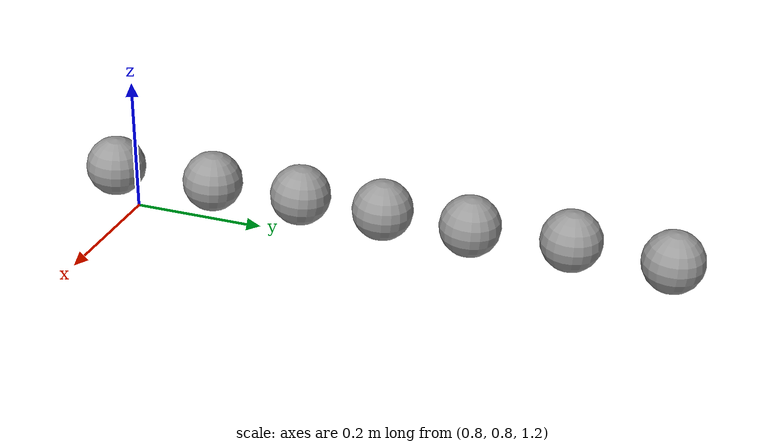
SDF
<sdf version="1.7">
 <world name="default">
  <light name="sun" type="directional">
   <pose>0 0 10 0 -0 0</pose>
   <diffuse>0.8 0.8 0.8 1</diffuse>
   <specular>0.2 0.2 0.2 1</specular>
   <attenuation>
    <range>1000</range>
    <constant>0.9</constant>
    <linear>0.01</linear>
    <quadratic>0.001</quadratic>
   </attenuation>
   <direction>-0.5 0.1 -0.9</direction>
   <spot><inner_angle>0</inner_angle><outer_angle>0</outer_angle><falloff>0</falloff></spot>
  </light>
  <model name="ground_plane">
   <static>1</static>
   <link name="link">
    <collision name="collision">
     <geometry><plane><normal>0 0 1</normal><size>100 100</size></plane></geometry>
     <surface>
      <contact><collide_bitmask>65535</collide_bitmask></contact>
      <friction><ode><mu>100</mu><mu2>50</mu2></ode></friction>
     </surface>
    </collision>
    <visual name="visual">
     <cast_shadows>0</cast_shadows>
     <geometry><plane><normal>0 0 1</normal><size>100 100</size></plane></geometry>
     <material>
      <script><uri>file://media/materials/scripts/gazebo.material</uri><name>Gazebo/Grey</name></script>
     </material>
    </visual>
   </link>
  </model>
  <gravity>0 0 -9.8</gravity>
  <magnetic_field>6e-06 2.3e-05 -4.2e-05</magnetic_field>
  <atmosphere type="adiabatic"/>
  <physics type="ode">
   <max_step_size>0.001</max_step_size>
   <real_time_factor>1</real_time_factor>
   <real_time_update_rate>1000</real_time_update_rate>
  </physics>
  <scene><ambient>0.4 0.4 0.4 1</ambient><background>0.7 0.7 0.7 1</background><shadows>1</shadows></scene>
  <spherical_coordinates>
   <surface_model>EARTH_WGS84</surface_model>
   <latitude_deg>0</latitude_deg>
   <longitude_deg>0</longitude_deg>
   <elevation>0</elevation>
   <heading_deg>0</heading_deg>
  </spherical_coordinates>
  <model name="unit_sphere">
   <pose>0.822964 1.61863 1.27211 -0.076471 0.019372 0.000922</pose>
   <link name="link">
    <inertial>
     <mass>1</mass>
     <inertia><ixx>0.1</ixx><ixy>0</ixy><ixz>0</ixz><iyy>0.1</iyy><iyz>0</iyz><izz>0.1</izz></inertia>
    </inertial>
    <collision name="collision"><geometry><sphere><radius>0.0443391</radius></sphere></geometry></collision>
    <visual name="visual">
     <geometry><sphere><radius>0.0443391</radius></sphere></geometry>
     <material>
      <script><name>Gazebo/Grey</name><uri>file://media/materials/scripts/gazebo.material</uri></script>
     </material>
    </visual>
   </link>
  </model>
  <model name="unit_sphere_clone">
   <pose>0.81264 1.47464 1.27209 -0.067968 0.027783 0.001489</pose>
   <link name="link">
    <inertial>
     <mass>1</mass>
     <inertia><ixx>0.1</ixx><ixy>0</ixy><ixz>0</ixz><iyy>0.1</iyy><iyz>0</iyz><izz>0.1</izz></inertia>
    </inertial>
    <collision name="collision"><geometry><sphere><radius>0.0443392</radius></sphere></geometry></collision>
    <visual name="visual">
     <geometry><sphere><radius>0.0443392</radius></sphere></geometry>
     <material>
      <script><name>Gazebo/Grey</name><uri>file://media/materials/scripts/gazebo.material</uri></script>
     </material>
    </visual>
   </link>
  </model>
  <model name="unit_sphere_clone_clone">
   <pose>0.82003 1.33111 1.27199 -0.080626 0.018663 0.000609</pose>
   <link name="link">
    <inertial>
     <mass>1</mass>
     <inertia><ixx>0.1</ixx><ixy>0</ixy><ixz>0</ixz><iyy>0.1</iyy><iyz>0</iyz><izz>0.1</izz></inertia>
    </inertial>
    <collision name="collision"><geometry><sphere><radius>0.0443392</radius></sphere></geometry></collision>
    <visual name="visual">
     <geometry><sphere><radius>0.0443392</radius></sphere></geometry>
     <material>
      <script><name>Gazebo/Grey</name><uri>file://media/materials/scripts/gazebo.material</uri></script>
     </material>
    </visual>
   </link>
  </model>
  <model name="unit_sphere_clone_clone_clone">
   <pose>0.816372 1.1995 1.27206 -0.080617 0.018657 0.00061</pose>
   <link name="link">
    <inertial>
     <mass>1</mass>
     <inertia><ixx>0.1</ixx><ixy>0</ixy><ixz>0</ixz><iyy>0.1</iyy><iyz>0</iyz><izz>0.1</izz></inertia>
    </inertial>
    <collision name="collision"><geometry><sphere><radius>0.0443392</radius></sphere></geometry></collision>
    <visual name="visual">
     <geometry><sphere><radius>0.0443392</radius></sphere></geometry>
     <material>
      <script><name>Gazebo/Grey</name><uri>file://media/materials/scripts/gazebo.material</uri></script>
     </material>
    </visual>
   </link>
  </model>
  <model name="unit_sphere_clone_clone_clone_clone">
   <pose>0.813575 1.07203 1.27209 -0.10563 -0.008076 0.000517</pose>
   <link name="link">
    <inertial>
     <mass>1</mass>
     <inertia><ixx>0.1</ixx><ixy>0</ixy><ixz>0</ixz><iyy>0.1</iyy><iyz>0</iyz><izz>0.1</izz></inertia>
    </inertial>
    <collision name="collision"><geometry><sphere><radius>0.0443392</radius></sphere></geometry></collision>
    <visual name="visual">
     <geometry><sphere><radius>0.0443392</radius></sphere></geometry>
     <material>
      <script><name>Gazebo/Grey</name><uri>file://media/materials/scripts/gazebo.material</uri></script>
     </material>
    </visual>
   </link>
  </model>
  <model name="unit_sphere_clone_clone_clone_clone_clone">
   <pose>0.817339 0.934203 1.27211 -0.082586 0.014698 0.000221</pose>
   <link name="link">
    <inertial>
     <mass>1</mass>
     <inertia><ixx>0.1</ixx><ixy>0</ixy><ixz>0</ixz><iyy>0.1</iyy><iyz>0</iyz><izz>0.1</izz></inertia>
    </inertial>
    <collision name="collision"><geometry><sphere><radius>0.0443392</radius></sphere></geometry></collision>
    <visual name="visual">
     <geometry><sphere><radius>0.0443392</radius></sphere></geometry>
     <material>
      <script><name>Gazebo/Grey</name><uri>file://media/materials/scripts/gazebo.material</uri></script>
     </material>
    </visual>
   </link>
  </model>
  <model name="unit_sphere_clone_clone_clone_clone_clone_clone">
   <pose>0.819992 0.776709 1.27209 -0.081961 0.01715 0.000588</pose>
   <link name="link">
    <inertial>
     <mass>1</mass>
     <inertia><ixx>0.1</ixx><ixy>0</ixy><ixz>0</ixz><iyy>0.1</iyy><iyz>0</iyz><izz>0.1</izz></inertia>
    </inertial>
    <collision name="collision"><geometry><sphere><radius>0.0443392</radius></sphere></geometry></collision>
    <visual name="visual">
     <geometry><sphere><radius>0.0443392</radius></sphere></geometry>
     <material>
      <script><name>Gazebo/Grey</name><uri>file://media/materials/scripts/gazebo.material</uri></script>
     </material>
    </visual>
   </link>
  </model>
 </world>
</sdf>
